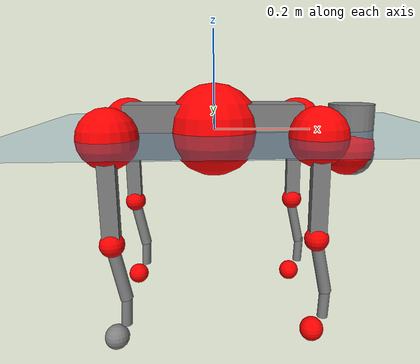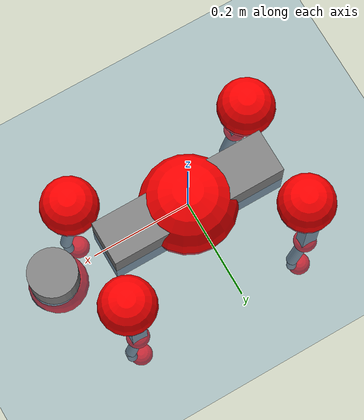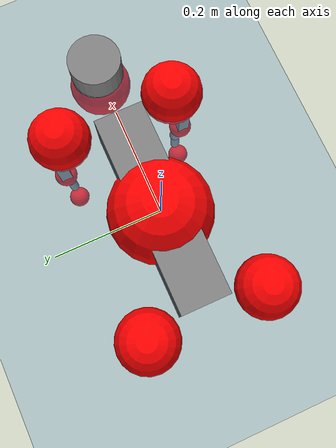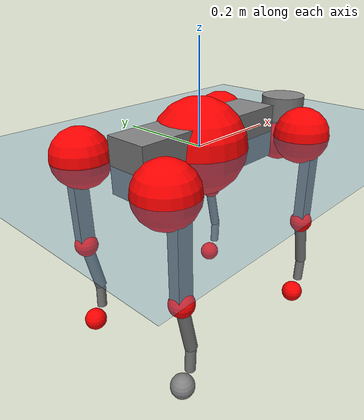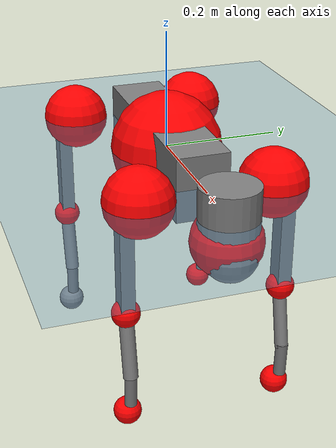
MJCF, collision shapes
<mujoco model="go2">
  <compiler angle="radian" assetdir="assets" balanceinertia="true" inertiafromgeom="false"/>

  <option timestep="0.005" density="1.2" viscosity="2e-05"/>

  <size nkey="1"/>

  <visual>
    <quality shadowsize="8192"/>
    <map shadowclip="0.5"/>
  </visual>

  <default>
    <default class="/">
      <geom contype="0" conaffinity="0" group="1" solref="-1000 -80"/>
      <site size="0.01 0.005 0.005" group="5"/>
      <general forcelimited="true" biastype="affine" gainprm="20" biasprm="0 -20 -0.5"/>
      <default class="go2">
        <joint armature="0.01" damping="0.01" frictionloss="0.2"/>
        <geom condim="1" margin="0.001"/>
        <default class="visual">
          <geom type="mesh" group="2"/>
        </default>
        <default class="collision">
          <geom group="3"/>
          <default class="foot">
            <geom size="0.022 0 0" condim="6" priority="1" friction="0.8 0.02 0.01" solimp="0.015 1 0.022"/>
          </default>
        </default>
        <default class="reward_collision_sphere">
          <geom group="5" rgba="1 0 0 1"/>
        </default>
      </default>
    </default>
  </default>

  <asset>
    <texture type="skybox" colorspace="auto" name="//unnamed_texture_0" builtin="gradient" rgb1="0.95 0.95 0.95" rgb2="0.95 0.95 0.95" width="100" height="600"/>
    <texture type="2d" colorspace="auto" name="texplane" builtin="checker" rgb1="0.345 0.575 0.748" rgb2="0.345 0.575 0.748" markrgb="1 1 1" width="512" height="512"/>
    <material name="MatPlane" class="/" texture="texplane" texuniform="true" texrepeat="2 2" specular="0.9"/>
    <material name="metal" class="/" rgba="0.9 0.95 0.95 1"/>
    <material name="black" class="/" rgba="0 0 0 1"/>
    <material name="white" class="/"/>
    <material name="gray" class="/" rgba="0.671705 0.692426 0.77427 1"/>
    <mesh name="base_0" class="/" file="base_0.obj"/>
    <mesh name="base_1" class="/" file="base_1.obj"/>
    <mesh name="base_2" class="/" file="base_2.obj"/>
    <mesh name="base_3" class="/" file="base_3.obj"/>
    <mesh name="base_4" class="/" file="base_4.obj"/>
    <mesh name="hip_0" class="/" file="hip_0.obj"/>
    <mesh name="hip_1" class="/" file="hip_1.obj"/>
    <mesh name="thigh_0" class="/" file="thigh_0.obj"/>
    <mesh name="thigh_1" class="/" file="thigh_1.obj"/>
    <mesh name="thigh_mirror_0" class="/" file="thigh_mirror_0.obj"/>
    <mesh name="thigh_mirror_1" class="/" file="thigh_mirror_1.obj"/>
    <mesh name="calf_0" class="/" file="calf_0.obj"/>
    <mesh name="calf_1" class="/" file="calf_1.obj"/>
    <mesh name="calf_mirror_0" class="/" file="calf_mirror_0.obj"/>
    <mesh name="calf_mirror_1" class="/" file="calf_mirror_1.obj"/>
    <mesh name="foot" class="/" file="foot.obj"/>
  </asset>

  <worldbody>
    <geom name="floor" class="/" size="100 100 0.125" type="plane" group="0" material="MatPlane"/>
    <light name="toplight_shadow" class="/" pos="0 0 5" dir="0.0990148 0.0990148 -0.990148" type="directional" ambient="0.04 0.04 0.04" diffuse="0.55 0.55 0.55" specular="0.12 0.12 0.12"/>
    <light name="toplight_fill" class="/" pos="0 0 5" dir="0.0990148 0.0990148 -0.990148" type="directional" castshadow="false" ambient="0.04 0.04 0.04" diffuse="0.3 0.3 0.3" specular="0.08 0.08 0.08"/>
    <body name="trunk" childclass="go2" pos="-0.000205163 0.00088112 -0.000282638" quat="1 -5.51783e-05 0.00017351 0.00040006">
      <inertial pos="0.0218649 -0.000464816 -0.00576512" quat="0.000848721 0.710948 -0.00164957 0.703243" mass="5.9998" diaginertia="0.109845 0.0781251 0.0151193"/>
      <joint name="//unnamed_joint_0" type="free" armature="0" damping="0" frictionloss="0"/>
      <geom name="//unnamed_geom_1" class="visual" material="black" mesh="base_0"/>
      <geom name="//unnamed_geom_2" class="visual" material="black" mesh="base_1"/>
      <geom name="//unnamed_geom_3" class="visual" material="black" mesh="base_2"/>
      <geom name="//unnamed_geom_4" class="visual" material="white" mesh="base_3"/>
      <geom name="//unnamed_geom_5" class="visual" material="gray" mesh="base_4"/>
      <geom name="trunk_1" class="collision" size="0.180172 0.0447795 0.0545975" type="box"/>
      <geom name="trunk_2" class="collision" size="0.0478926 0.0431033" pos="0.28704 0 0.00910353" type="cylinder"/>
      <geom name="trunk_3" class="collision" size="0.045019" pos="0.295097 0 -0.0546212"/>
      <geom name="//unnamed_geom_9" class="reward_collision_sphere" size="0.0957851"/>
      <geom name="//unnamed_geom_10" class="reward_collision_sphere" size="0.0574711" pos="0.282004 0 -0.0409659"/>
      <site name="imu" pos="-0.0247333 -0.00130409 0.0372492" size="0.00957851"/>
      <camera name="track" pos="0 -1.91209 0" quat="0.707107 0.707107 0 0" mode="trackcom"/>
      <camera name="ego_camera" pos="0.314233 0 0.0409659" quat="-0.5 -0.5 0.5 0.5"/>
      <body name="FL_hip" pos="0.19452 0.045009 0.000590671" quat="1 8.83391e-05 8.78694e-05 -5.49381e-05">
        <inertial pos="-0.00528179 0.00271502 -0.000444114" quat="0.494253 0.502575 0.505465 0.497631" mass="0.600262" diaginertia="0.000924836 0.000481611 0.000302515"/>
        <joint name="FL_hip_joint" pos="0 0 0" axis="0.999998 -0.00114041 -0.00135405" stiffness="0.00605091" range="-1.03441 1.04166" armature="0.00968206" damping="0.00331914" frictionloss="0.191156"/>
        <geom name="//unnamed_geom_11" class="visual" material="metal" mesh="hip_0"/>
        <geom name="//unnamed_geom_12" class="visual" material="gray" mesh="hip_1"/>
        <geom name="//unnamed_geom_13" class="collision" size="0.0440612 0.019157" pos="0 0.0764835 0" quat="0.707107 0.707107 0 0" type="cylinder"/>
        <geom name="//unnamed_geom_14" class="reward_collision_sphere" size="0.0574711" pos="0 0.0669231 0"/>
        <body name="FL_thigh" pos="-0.00123222 0.0905723 0.000611288" quat="1 -0.000197084 -0.000132442 -9.74459e-06">
          <inertial pos="-0.00378658 -0.0204876 -0.0294883" quat="0.829178 0.0847855 -0.0206767 0.55213" mass="1.00434" diaginertia="0.00618931 0.00469077 0.00054944"/>
          <joint name="FL_thigh_joint" pos="0 0 0" axis="-0.00196305 0.999996 -0.00214477" stiffness="0.005611" range="-1.5508 3.49315" armature="0.0098021" damping="0.00614937" frictionloss="0.199022"/>
          <geom name="//unnamed_geom_15" class="visual" material="metal" mesh="thigh_0"/>
          <geom name="//unnamed_geom_16" class="visual" material="gray" mesh="thigh_1"/>
          <geom name="//unnamed_geom_17" class="collision" size="0.102011 0.0117337 0.0162835" pos="0 0 -0.0969526" quat="0.707107 0 0.707107 0" type="box"/>
          <body name="FL_calf" pos="-0.00045472 0.000253121 -0.194254" quat="1 -4.92206e-05 -8.43646e-05 0.000120436">
            <inertial pos="0.00668437 0.000314695 -0.127658" quat="0.7108 0.00161579 -0.00458349 0.703377" mass="0.21477" diaginertia="0.00156106 0.00118235 3.36765e-05"/>
            <joint name="FL_calf_joint" pos="0 0 0" axis="0.00134016 0.999999 0.00108865" range="-2.71268 -0.84873" armature="0.00996713" damping="0.00592357" frictionloss="0.193551"/>
            <geom name="//unnamed_geom_18" class="visual" material="gray" mesh="calf_0"/>
            <geom name="//unnamed_geom_19" class="visual" material="black" mesh="calf_1"/>
            <geom name="FL_calf0" class="collision" size="0.0114942 0.0574711" pos="0.00805725 0 -0.0546212" quat="0.994493 0 -0.104807 0" type="cylinder"/>
            <geom name="//unnamed_geom_21" class="collision" size="0.0105364 0.0311302" pos="0.0201431 0 -0.134732" quat="0.999688 0 0.0249974 0" type="cylinder"/>
            <geom name="//unnamed_geom_22" class="visual" pos="0 0 -0.193905" quat="1 0 0 0" material="black" mesh="foot"/>
            <geom name="FL_foot" class="foot" size="0.0160865" pos="-0.00201431 0 -0.193905"/>
            <geom name="//unnamed_geom_24" class="reward_collision_sphere" size="0.0239463"/>
            <geom name="//unnamed_geom_25" class="reward_collision_sphere" size="0.0239463" pos="-0.00201431 0 -0.193905"/>
            <site name="FL_foot" class="foot" pos="-0.00201431 0 -0.193905" size="0.00957851"/>
          </body>
        </body>
      </body>
      <body name="FR_hip" pos="0.194858 -0.042885 -6.42121e-06" quat="1 8.81572e-06 6.80262e-06 -2.99659e-05">
        <inertial pos="-0.00519745 -0.00174416 -0.0007702" quat="0.498103 0.505918 0.499228 0.496701" mass="0.597867" diaginertia="0.00092814 0.000476146 0.000301197"/>
        <joint name="FR_hip_joint" pos="0 0 0" axis="0.999968 -0.00626873 -0.00488169" range="-1.04938 1.0406" armature="0.00986328" damping="0.0150388" frictionloss="0.195327"/>
        <geom name="//unnamed_geom_26" class="visual" pos="0 3.98036e-10 1.70726e-08" quat="4.63268e-05 1 0 0" material="metal" mesh="hip_0"/>
        <geom name="//unnamed_geom_27" class="visual" pos="0 6.45264e-10 -4.2227e-08" quat="4.63268e-05 1 0 0" material="gray" mesh="hip_1"/>
        <geom name="//unnamed_geom_28" class="collision" size="0.0440612 0.019157" pos="0 -0.0764835 0" quat="0.707107 0.707107 0 0" type="cylinder"/>
        <geom name="//unnamed_geom_29" class="reward_collision_sphere" size="0.0574711" pos="0 -0.0669231 0"/>
        <body name="FR_thigh" pos="-0.000390149 -0.0907342 -0.0002256" quat="1 -1.05609e-06 -1.50754e-05 -8.81687e-05">
          <inertial pos="-0.00470035 0.0222732 -0.0295275" quat="0.55147 -0.0202496 0.084652 0.829641" mass="1.01583" diaginertia="0.00622638 0.00466236 0.000549006"/>
          <joint name="FR_thigh_joint" pos="0 0 0" axis="-0.000167732 -0.999998 -0.00217947" stiffness="0.00339643" range="-3.49085 1.57425" armature="0.00966713" damping="0.00915054" frictionloss="0.20001"/>
          <geom name="//unnamed_geom_30" class="visual" material="metal" mesh="thigh_mirror_0"/>
          <geom name="//unnamed_geom_31" class="visual" material="gray" mesh="thigh_mirror_1"/>
          <geom name="//unnamed_geom_32" class="collision" size="0.102011 0.0117337 0.0162835" pos="0 0 -0.0969526" quat="0.707107 0 0.707107 0" type="box"/>
          <body name="FR_calf" pos="-0.000717254 0.000214605 -0.19373" quat="1 -0.000250345 -1.52313e-05 6.03279e-05">
            <inertial pos="0.00719511 -0.000172338 -0.129033" quat="0.704101 -0.00370239 0.000812782 0.710089" mass="0.213452" diaginertia="0.00155683 0.00116436 3.38074e-05"/>
            <joint name="FR_calf_joint" pos="0 0 0" axis="-5.24508e-05 -1 -8.79919e-05" stiffness="0.00038737" range="0.843231 2.72984" armature="0.00945738" damping="0.00935466" frictionloss="0.19187"/>
            <geom name="//unnamed_geom_33" class="visual" material="gray" mesh="calf_mirror_0"/>
            <geom name="//unnamed_geom_34" class="visual" material="black" mesh="calf_mirror_1"/>
            <geom name="FR_calf0" class="collision" size="0.0124521 0.0574711" pos="0.0100716 0 -0.0546212" quat="0.995004 0 -0.0998334 0" type="cylinder"/>
            <geom name="//unnamed_geom_36" class="collision" size="0.0105364 0.0311302" pos="0.0201431 0 -0.134732" quat="0.999688 0 0.0249974 0" type="cylinder"/>
            <geom name="//unnamed_geom_37" class="visual" pos="0 0 -0.193905" quat="1 0 0 0" material="black" mesh="foot"/>
            <geom name="FR_foot" class="foot" size="0.0212958" pos="-0.00201431 0 -0.193905"/>
            <geom name="//unnamed_geom_39" class="reward_collision_sphere" size="0.0239463"/>
            <geom name="//unnamed_geom_40" class="reward_collision_sphere" size="0.0239463" pos="-0.00201431 0 -0.193905"/>
            <site name="FR_foot" class="foot" pos="-0.00201431 0 -0.193905" size="0.00957851"/>
          </body>
        </body>
      </body>
      <body name="RL_hip" pos="-0.19467 0.0437519 0.00137848" quat="1 -0.00017952 9.2507e-05 -0.000178572">
        <inertial pos="0.00587679 0.00171506 -0.00100544" quat="0.507082 0.49888 0.495489 0.498475" mass="0.591827" diaginertia="0.000912596 0.000480355 0.000297565"/>
        <joint name="RL_hip_joint" pos="0 0 0" axis="-0.999853 -0.00608586 0.0159986" stiffness="0.00144426" range="-1.05499 1.04988" armature="0.0093395" damping="0.0144127" frictionloss="0.184599"/>
        <geom name="//unnamed_geom_41" class="visual" pos="-8.43308e-10 0 -1.65308e-07" quat="4.63268e-05 0 1 0" material="metal" mesh="hip_0"/>
        <geom name="//unnamed_geom_42" class="visual" pos="-1.3671e-09 0 -1.46604e-07" quat="4.63268e-05 0 1 0" material="gray" mesh="hip_1"/>
        <geom name="//unnamed_geom_43" class="collision" size="0.0440612 0.019157" pos="0 0.0764835 0" quat="0.707107 0.707107 0 0" type="cylinder"/>
        <geom name="//unnamed_geom_44" class="reward_collision_sphere" size="0.0574711" pos="0 0.0669231 0"/>
        <body name="RL_thigh" pos="0.000225997 0.0916068 0.000113076" quat="1 -4.21552e-06 3.55674e-07 -2.12422e-06">
          <inertial pos="-0.00378214 -0.0201582 -0.0300101" quat="0.828344 0.0846287 -0.0171412 0.553526" mass="1.00821" diaginertia="0.00622823 0.00462238 0.000548295"/>
          <joint name="RL_thigh_joint" pos="0 0 0" axis="-0.000743321 0.999999 0.0014918" stiffness="0.000118357" range="-0.522751 4.53887" armature="0.00915844" damping="0.00319566" frictionloss="0.199098"/>
          <geom name="//unnamed_geom_45" class="visual" material="metal" mesh="thigh_0"/>
          <geom name="//unnamed_geom_46" class="visual" material="gray" mesh="thigh_1"/>
          <geom name="//unnamed_geom_47" class="collision" size="0.102011 0.0117337 0.0162835" pos="0 0 -0.0969526" quat="0.707107 0 0.707107 0" type="box"/>
          <body name="RL_calf" pos="0.000611686 -0.000771298 -0.194503" quat="1 -2.47957e-05 0.000229797 1.0139e-05">
            <inertial pos="0.00630736 -0.000913443 -0.128343" quat="0.711654 0.00202462 -0.00457725 0.702513" mass="0.21203" diaginertia="0.00156573 0.00118481 3.36302e-05"/>
            <joint name="RL_calf_joint" pos="0 0 0" axis="-0.0062992 0.999967 0.00521849" stiffness="0.000115869" range="-2.71337 -0.833962" armature="0.00986061" damping="0" frictionloss="0.200202"/>
            <geom name="//unnamed_geom_48" class="visual" material="gray" mesh="calf_0"/>
            <geom name="//unnamed_geom_49" class="visual" material="black" mesh="calf_1"/>
            <geom name="RL_calf0" class="collision" size="0.0124521 0.0574711" pos="0.0100716 0 -0.0546212" quat="0.995004 0 -0.0998334 0" type="cylinder"/>
            <geom name="//unnamed_geom_51" class="collision" size="0.0105364 0.0311302" pos="0.0201431 0 -0.134732" quat="0.999688 0 0.0249974 0" type="cylinder"/>
            <geom name="//unnamed_geom_52" class="visual" pos="0 0 -0.193905" quat="1 0 0 0" material="black" mesh="foot"/>
            <geom name="RL_foot" class="foot" size="0.0189606" pos="-0.00201431 0 -0.193905"/>
            <geom name="//unnamed_geom_54" class="reward_collision_sphere" size="0.0239463"/>
            <geom name="//unnamed_geom_55" class="reward_collision_sphere" size="0.0239463" pos="-0.00201431 0 -0.193905"/>
            <site name="RL_foot" class="foot" pos="-0.00201431 0 -0.193905" size="0.00957851"/>
          </body>
        </body>
      </body>
      <body name="RR_hip" pos="-0.194818 -0.0457984 -0.0011253" quat="1 3.04046e-05 0.000369727 -0.000158041">
        <inertial pos="0.00505561 -0.00220667 0.000273512" quat="0.499352 0.496506 0.498339 0.505755" mass="0.600312" diaginertia="0.000924009 0.000481445 0.000305551"/>
        <joint name="RR_hip_joint" pos="0 0 0" axis="-1 0.000884056 -0.000247988" range="-1.05374 1.03003" armature="0.00957617" damping="0.00920419" frictionloss="0.183294"/>
        <geom name="//unnamed_geom_56" class="visual" pos="8.41539e-10 3.98036e-10 -1.8238e-07" quat="2.14617e-09 4.63268e-05 4.63268e-05 -1" material="metal" mesh="hip_0"/>
        <geom name="//unnamed_geom_57" class="visual" pos="1.37148e-09 6.45264e-10 -1.04377e-07" quat="2.14617e-09 4.63268e-05 4.63268e-05 -1" material="gray" mesh="hip_1"/>
        <geom name="//unnamed_geom_58" class="collision" size="0.0440612 0.019157" pos="0 -0.0764835 0" quat="0.707107 0.707107 0 0" type="cylinder"/>
        <geom name="//unnamed_geom_59" class="reward_collision_sphere" size="0.0574711" pos="0 -0.0669231 0"/>
        <body name="RR_thigh" pos="0.00126444 -0.0926245 -0.00079397" quat="1 1.72504e-05 0.000258999 5.24762e-05">
          <inertial pos="-0.00380695 0.0221286 -0.0298936" quat="0.55151 -0.0192415 0.0852657 0.829576" mass="1.02269" diaginertia="0.00621442 0.00467303 0.000558921"/>
          <joint name="RR_thigh_joint" pos="0 0 0" axis="-0.00589898 -0.999977 -0.00339081" range="-4.54275 0.53793" armature="0.00937248" damping="0.00893366" frictionloss="0.194464"/>
          <geom name="//unnamed_geom_60" class="visual" material="metal" mesh="thigh_mirror_0"/>
          <geom name="//unnamed_geom_61" class="visual" material="gray" mesh="thigh_mirror_1"/>
          <geom name="//unnamed_geom_62" class="collision" size="0.102011 0.0117337 0.0162835" pos="0 0 -0.0969526" quat="0.707107 0 0.707107 0" type="box"/>
          <body name="RR_calf" pos="0.0001419 -0.000615904 -0.194416" quat="1 0.000100107 5.19389e-05 8.91218e-05">
            <inertial pos="0.00688115 0.000510629 -0.128645" quat="0.703467 -0.00434523 0.00116003 0.710714" mass="0.210059" diaginertia="0.00155365 0.00116219 3.33681e-05"/>
            <joint name="RR_calf_joint" pos="0 0 0" axis="-0.000729241 -0.99997 0.00775549" stiffness="0.00100957" range="0.833846 2.71589" armature="0.00962848" damping="0.00748277" frictionloss="0.184169"/>
            <geom name="//unnamed_geom_63" class="visual" material="gray" mesh="calf_mirror_0"/>
            <geom name="//unnamed_geom_64" class="visual" material="black" mesh="calf_mirror_1"/>
            <geom name="RR_calf0" class="collision" size="0.0124521 0.0574711" pos="0.0100716 0 -0.0546212" quat="0.995004 0 -0.0998334 0" type="cylinder"/>
            <geom name="//unnamed_geom_66" class="collision" size="0.0105364 0.0311302" pos="0.0201431 0 -0.134732" quat="0.999688 0 0.0249974 0" type="cylinder"/>
            <geom name="//unnamed_geom_67" class="visual" pos="0 0 -0.193905" quat="1 0 0 0" material="black" mesh="foot"/>
            <geom name="RR_foot" class="foot" size="0.0240925" pos="-0.00201431 0 -0.193905"/>
            <geom name="//unnamed_geom_69" class="reward_collision_sphere" size="0.0239463"/>
            <geom name="//unnamed_geom_70" class="reward_collision_sphere" size="0.0239463" pos="-0.00201431 0 -0.193905"/>
            <site name="RR_foot" class="foot" pos="-0.00201431 0 -0.193905" size="0.00957851"/>
          </body>
        </body>
      </body>
    </body>
  </worldbody>

  <contact>
    <pair class="/" geom1="floor" geom2="FL_foot" name="//unnamed_contact_0"/>
    <pair class="/" geom1="floor" geom2="FR_foot" name="//unnamed_contact_1"/>
    <pair class="/" geom1="floor" geom2="RL_foot" name="//unnamed_contact_2"/>
    <pair class="/" geom1="floor" geom2="RR_foot" name="//unnamed_contact_3"/>
  </contact>

  <actuator>
    <general name="FL_hip" class="/" joint="FL_hip_joint" forcerange="-22.1875 22.1875" gainprm="19.2766" biasprm="0 -19.2766 -0.476395"/>
    <general name="FL_thigh" class="/" joint="FL_thigh_joint" forcerange="-22.8285 22.8285" gainprm="19.2766" biasprm="0 -19.2766 -0.476395"/>
    <general name="FL_calf" class="/" joint="FL_calf_joint" forcerange="-43.0166 43.0166" gainprm="19.2766" biasprm="0 -19.2766 -0.476395"/>
    <general name="FR_hip" class="/" joint="FR_hip_joint" forcerange="-23.178 23.178" gainprm="19.2766" biasprm="0 -19.2766 -0.476395"/>
    <general name="FR_thigh" class="/" joint="FR_thigh_joint" forcerange="-22.6994 22.6994" gainprm="19.2766" biasprm="0 -19.2766 -0.476395"/>
    <general name="FR_calf" class="/" joint="FR_calf_joint" forcerange="-44.5869 44.5869" gainprm="19.2766" biasprm="0 -19.2766 -0.476395"/>
    <general name="RL_hip" class="/" joint="RL_hip_joint" forcerange="-22.5844 22.5844" gainprm="19.2766" biasprm="0 -19.2766 -0.476395"/>
    <general name="RL_thigh" class="/" joint="RL_thigh_joint" forcerange="-22.6084 22.6084" gainprm="19.2766" biasprm="0 -19.2766 -0.476395"/>
    <general name="RL_calf" class="/" joint="RL_calf_joint" forcerange="-43.8365 43.8365" gainprm="19.2766" biasprm="0 -19.2766 -0.476395"/>
    <general name="RR_hip" class="/" joint="RR_hip_joint" forcerange="-23.2231 23.2231" gainprm="19.2766" biasprm="0 -19.2766 -0.476395"/>
    <general name="RR_thigh" class="/" joint="RR_thigh_joint" forcerange="-22.6783 22.6783" gainprm="19.2766" biasprm="0 -19.2766 -0.476395"/>
    <general name="RR_calf" class="/" joint="RR_calf_joint" forcerange="-43.5788 43.5788" gainprm="19.2766" biasprm="0 -19.2766 -0.476395"/>
  </actuator>

  <sensor>
    <gyro site="imu" name="imu_angular_velocity"/>
    <velocimeter site="imu" name="imu_linear_velocity"/>
    <framelinvel objtype="site" objname="FL_foot" name="FL_foot_global_linear_velocity"/>
    <framelinvel objtype="site" objname="FR_foot" name="FR_foot_global_linear_velocity"/>
    <framelinvel objtype="site" objname="RL_foot" name="RL_foot_global_linear_velocity"/>
    <framelinvel objtype="site" objname="RR_foot" name="RR_foot_global_linear_velocity"/>
  </sensor>

  <keyframe>
    <key name="home" qpos="0 0 0.325 1 0 0 0 0.1 0.8 -1.5 -0.1 -0.8 1.5 -0.1 0.8 -1.5 0.1 -0.8 1.5"/>
  </keyframe>
</mujoco>
